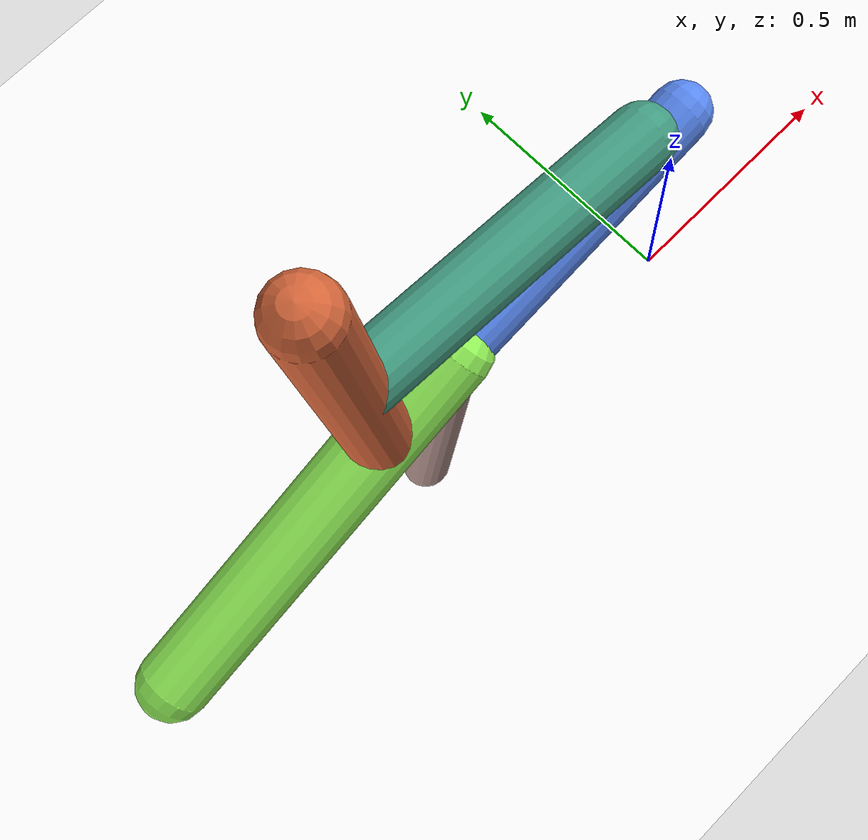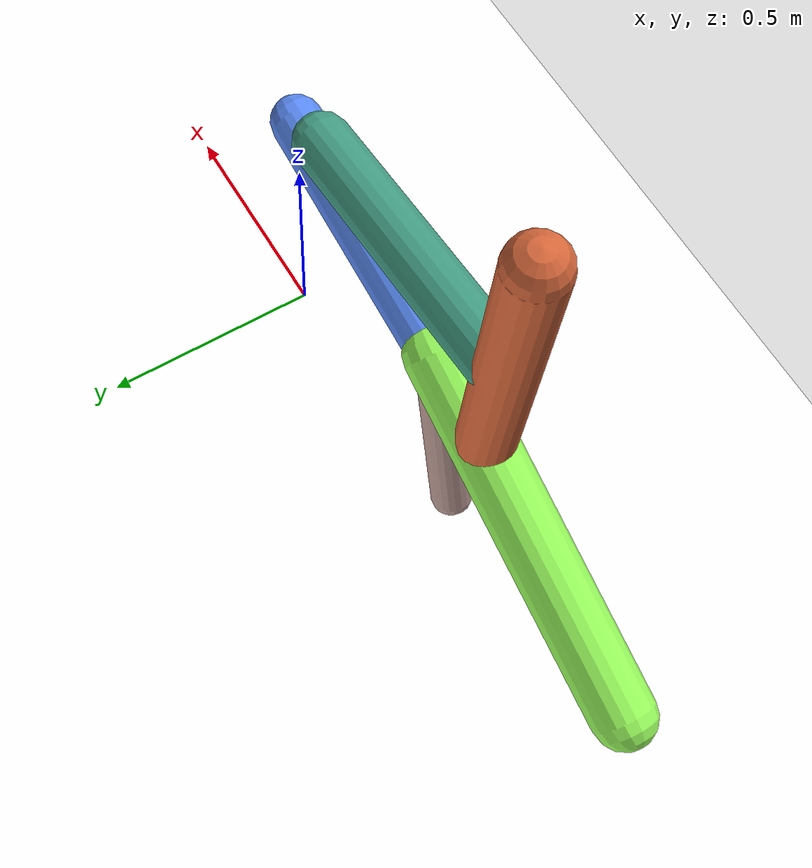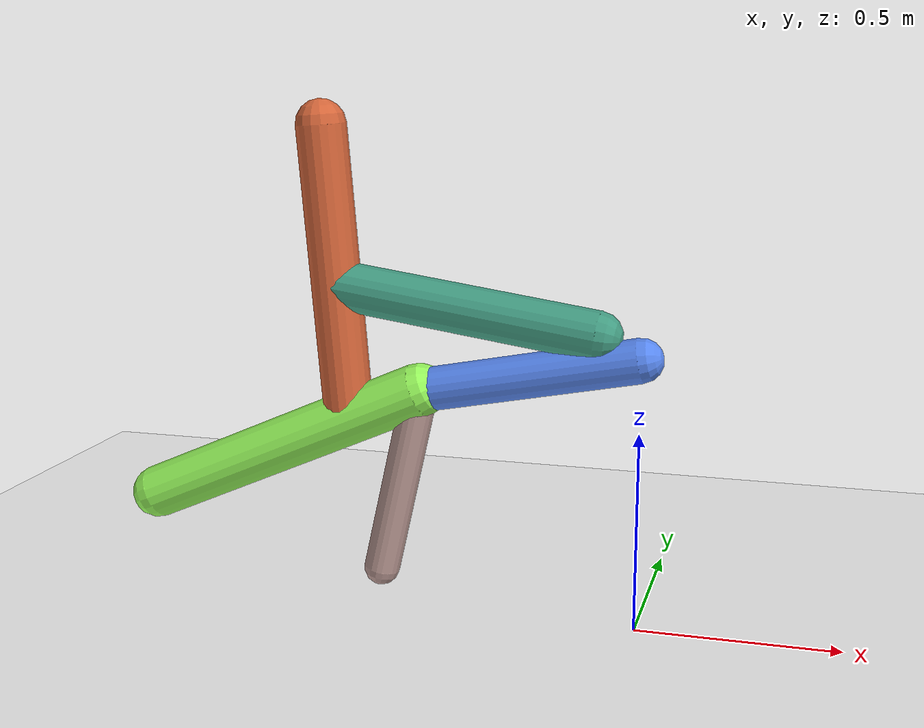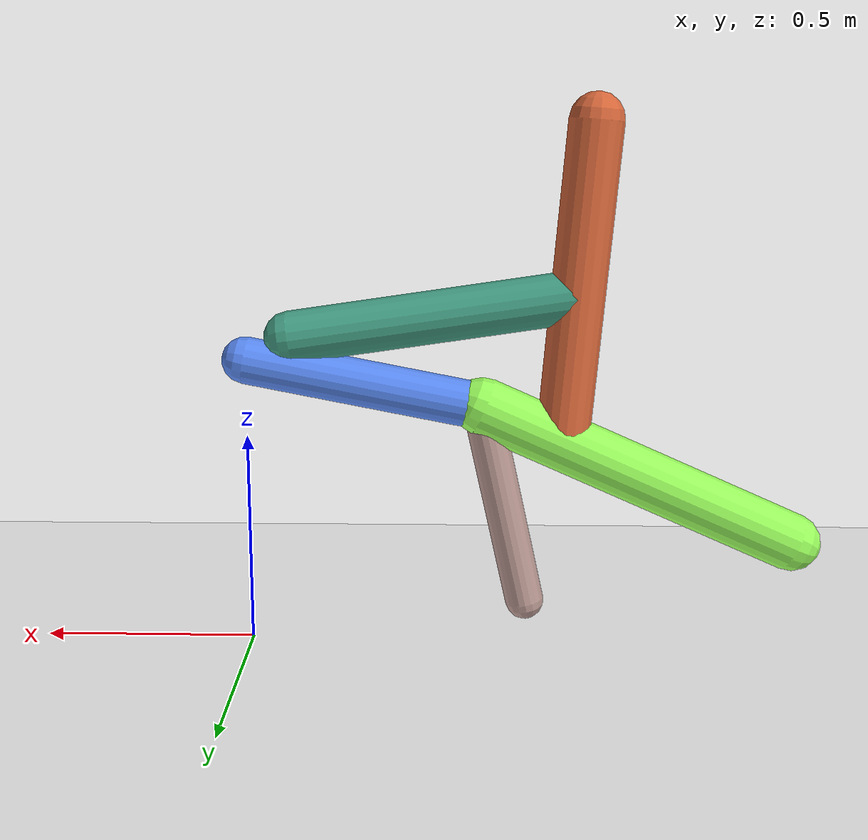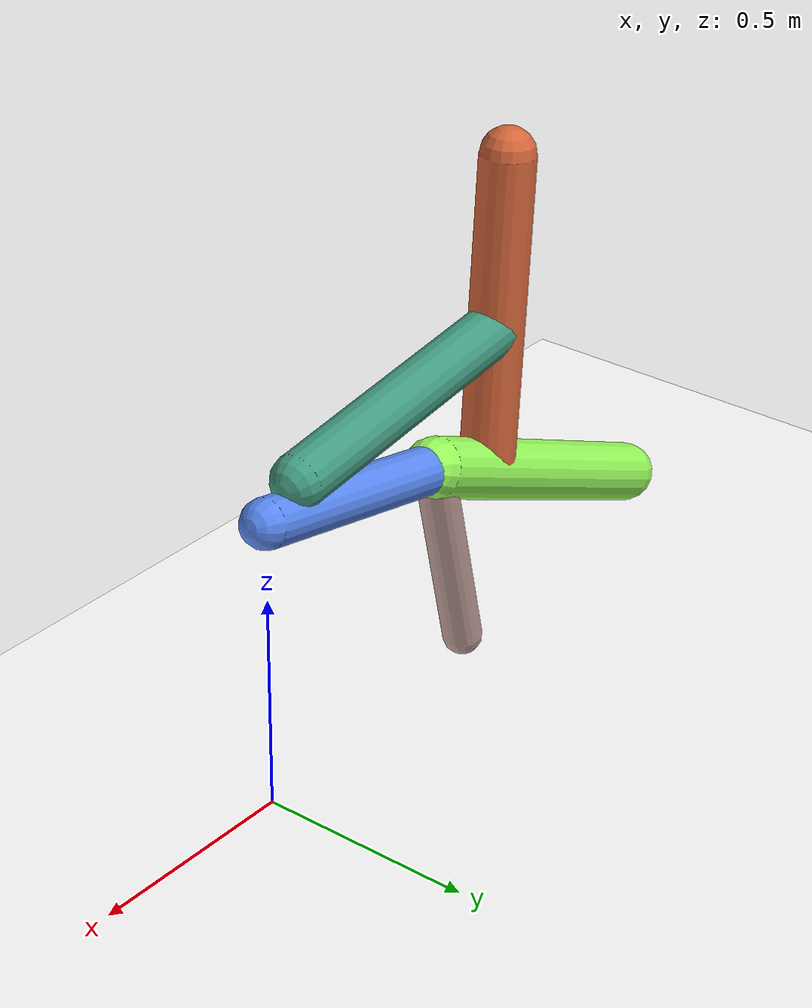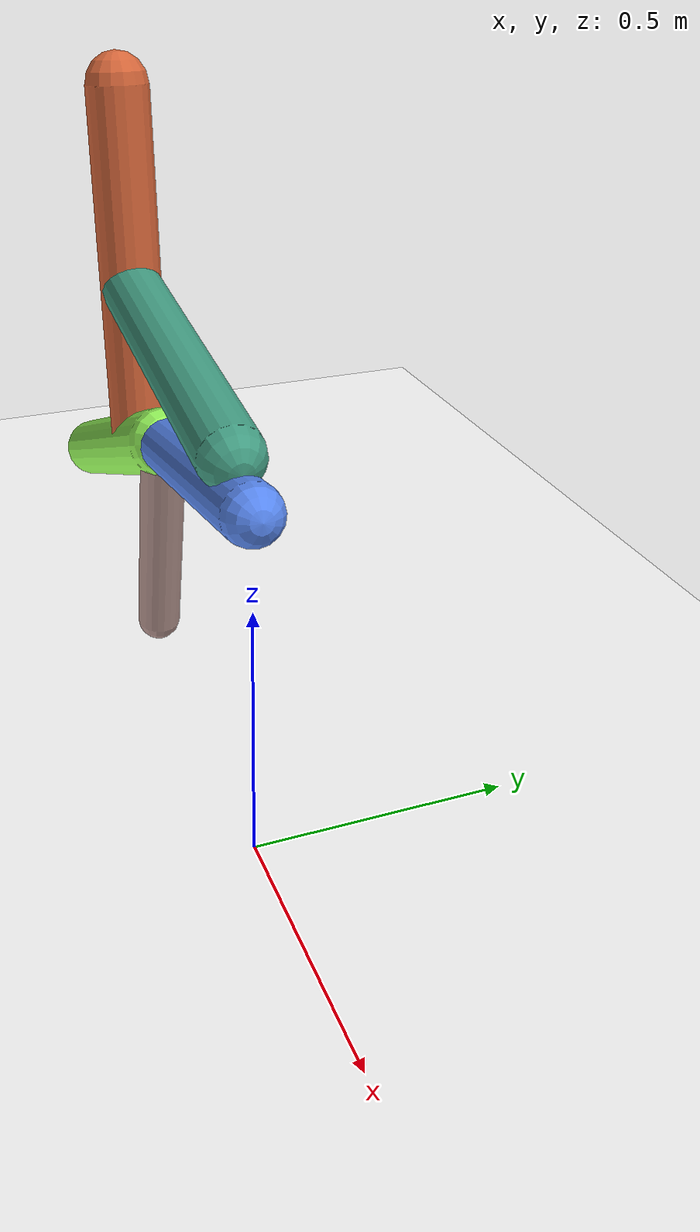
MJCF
<mujoco model="morphology">
  <option timestep="0.01"/>
  <default>
    <default class="/"/>
    <default class="0/"/>
    <default class="0/1/"/>
    <default class="0/1/2/"/>
    <default class="0/1/2/3/"/>
    <default class="0/4/"/>
  </default>
  <asset>
    <texture name="texplane" type="2d" builtin="checker" rgb1="0.10000000000000001 0.20000000000000001 0.29999999999999999" rgb2="0.20000000000000001 0.29999999999999999 0.40000000000000002" width="300" height="300"/>
    <material name="MatPlane" class="/" texture="texplane" texrepeat="20 20" specular="1" shininess="1" reflectance="0.5"/>
  </asset>
  <worldbody>
    <light name="//unnamed_light_0" class="/" directional="true" pos="0 0 1.5" dir="0 0 -1.3" cutoff="100" exponent="1" diffuse="1 1 1" specular="0.10000000000000001 0.10000000000000001 0.10000000000000001"/>
    <geom name="ground" class="/" type="plane" size="15 15 0.5" material="MatPlane" rgba="1 1 1 1"/>
    <site name="body" class="/" size="9.9999999999999995e-07 9.9999999999999995e-07 9.9999999999999995e-07" pos="0 0 0.68122003078460691"/>
    <body pos="0 0 0.68122003078460691" name="0/">
      <joint name="0/rootx/" class="/" type="slide" axis="1 0 0" limited="false" stiffness="0" armature="0" damping="0"/>
      <joint name="0/rootz/" class="/" type="slide" axis="0 0 1" limited="false" stiffness="0" armature="0" damping="0"/>
      <joint name="0/rooty/" class="/" type="hinge" axis="0 1 0" limited="false" stiffness="0" armature="0" damping="0"/>
      <geom name="0/geom" class="0/" type="capsule" contype="1" conaffinity="1" condim="3" size="0.054936511628482523" rgba="0.35005202673975366 0.5392114465382567 0.95299630006212266 1" friction="0.59999999999999998 0.10000000000000001 0.10000000000000001" fromto="0 0 0 -0.5675391856668478 0 -0.11053785967556129"/>
      <site name="0/end0" class="0/" size="0.0050000000000000001" pos="-0.5675391856668478 0 -0.11053785967556129"/>
      <site name="0/attach1" class="0/" size="9.9999999999999995e-07 9.9999999999999995e-07 9.9999999999999995e-07" pos="-0.54891010434606513 0 -0.10690953086774205"/>
      <body pos="-0.54891010434606513 0 -0.10690953086774205" name="0/1/">
        <joint name="0/1/joint/" class="0/" type="hinge" axis="0 1 0" limited="true" range="-49.094273605072829 49.094273605072829"/>
        <geom name="0/1/geom" class="0/1/" type="capsule" contype="1" conaffinity="1" condim="3" size="0.068877570707377905" rgba="0.60176020277501807 0.98957778201801105 0.3627097796552563 1" friction="0.59999999999999998 0.10000000000000001 0.10000000000000001" fromto="0 0 0 -0.72966758377488983 0 -0.32318915056262171"/>
        <site name="0/1/end1" class="0/1/" size="0.0050000000000000001" pos="-0.72966758377488983 0 -0.32318915056262171"/>
        <site name="0/1/attach2" class="0/1/" size="9.9999999999999995e-07 9.9999999999999995e-07 9.9999999999999995e-07" pos="-0.18582747802123686 0 -0.082307925017272174"/>
        <body pos="-0.18582747802123686 0 -0.082307925017272174" name="0/1/2/">
          <geom name="0/1/2/geom" class="0/1/2/" type="capsule" contype="1" conaffinity="1" condim="3" size="0.062515663128953514" rgba="0.84446989315630216 0.40594596526780014 0.23101357196007066 1" friction="0.59999999999999998 0.10000000000000001 0.10000000000000001" fromto="0 0 0 -0.055638265151322974 0 0.7276197238687212"/>
          <site name="0/1/2/end2" class="0/1/2/" size="0.0050000000000000001" pos="-0.055638265151322974 0 0.7276197238687212"/>
          <site name="0/1/2/attach3" class="0/1/2/" size="9.9999999999999995e-07 9.9999999999999995e-07 9.9999999999999995e-07" pos="-0.025891880175502459 0 0.33860586149662053"/>
          <body pos="-0.025891880175502459 0 0.33860586149662053" name="0/1/2/3/">
            <joint name="0/1/2/3/joint/" class="0/1/2/" type="hinge" axis="0 1 0" limited="true" range="-54.191473448970186 54.191473448970186"/>
            <geom name="0/1/2/3/geom" class="0/1/2/3/" type="capsule" contype="1" conaffinity="1" condim="3" size="0.061393171698082866" rgba="0.26228155303797163 0.61869606777827368 0.51537641343953644 1" friction="0.59999999999999998 0.10000000000000001 0.10000000000000001" fromto="0 0 0 0.65596008872852529 0 -0.095806440170744356"/>
            <site name="0/1/2/3/end3" class="0/1/2/3/" size="0.0050000000000000001" pos="0.65596008872852529 0 -0.095806440170744356"/>
          </body>
        </body>
      </body>
      <site name="0/attach4" class="0/" size="9.9999999999999995e-07 9.9999999999999995e-07 9.9999999999999995e-07" pos="-0.54658064517801008 0 -0.10645582927824587"/>
      <body pos="-0.54658064517801008 0 -0.10645582927824587" name="0/4/">
        <joint name="0/4/joint/" class="0/" type="hinge" axis="0 1 0" limited="true" range="-31.988581348250321 31.988581348250321"/>
        <geom name="0/4/geom" class="0/4/" type="capsule" contype="1" conaffinity="1" condim="3" size="0.045482979306076594" rgba="0.72577771859525642 0.59718545277551993 0.57433933821094607 1" friction="0.59999999999999998 0.10000000000000001 0.10000000000000001" fromto="0 0 0 -0.10791735307456574 0 -0.47476423044429894"/>
        <site name="0/4/end4" class="0/4/" size="0.0050000000000000001" pos="-0.10791735307456574 0 -0.47476423044429894"/>
      </body>
      <camera name="0/side" class="0/" mode="trackcom" pos="0.40000000000000002 -4 0.20000000000000001" quat="0.70699999999999996 0.70699999999999996 0 0"/>
    </body>
  </worldbody>
  <actuator>
    <motor name="0/1/motor" class="0/1/" ctrllimited="true" ctrlrange="-1 1" gear="64" joint="0/1/joint/"/>
    <motor name="0/1/2/3/motor" class="0/1/2/3/" ctrllimited="true" ctrlrange="-1 1" gear="50" joint="0/1/2/3/joint/"/>
    <motor name="0/4/motor" class="0/4/" ctrllimited="true" ctrlrange="-1 1" gear="57" joint="0/4/joint/"/>
  </actuator>
  <sensor>
    <subtreelinvel name="velocity" body="0/"/>
  </sensor>
</mujoco>
